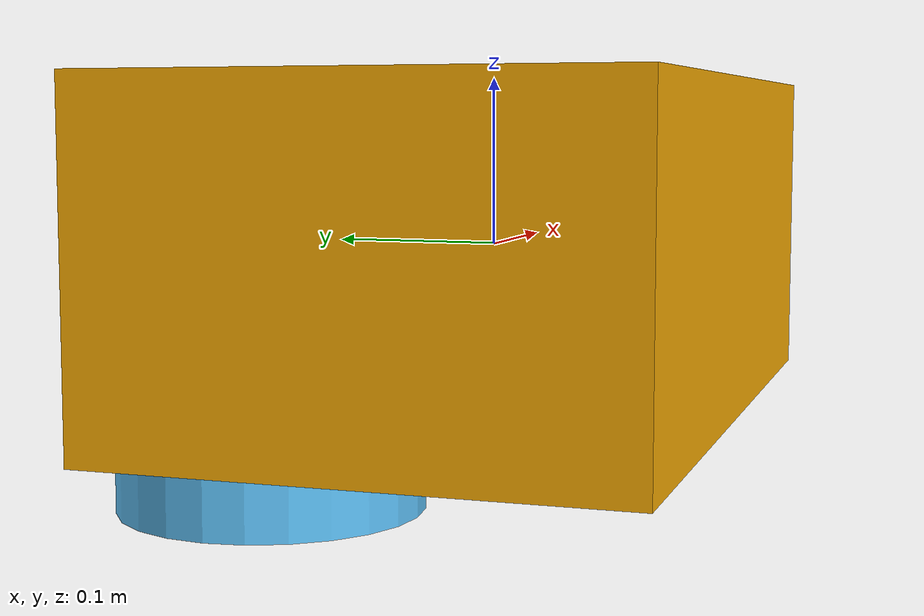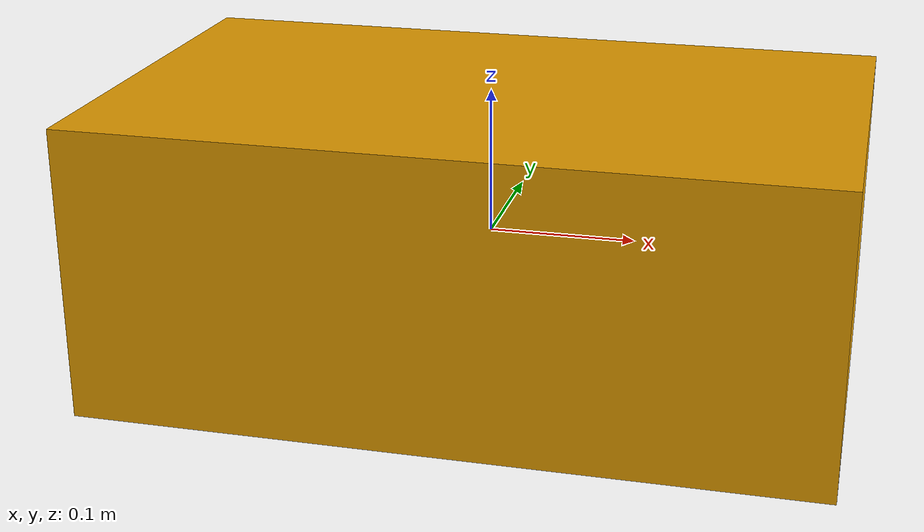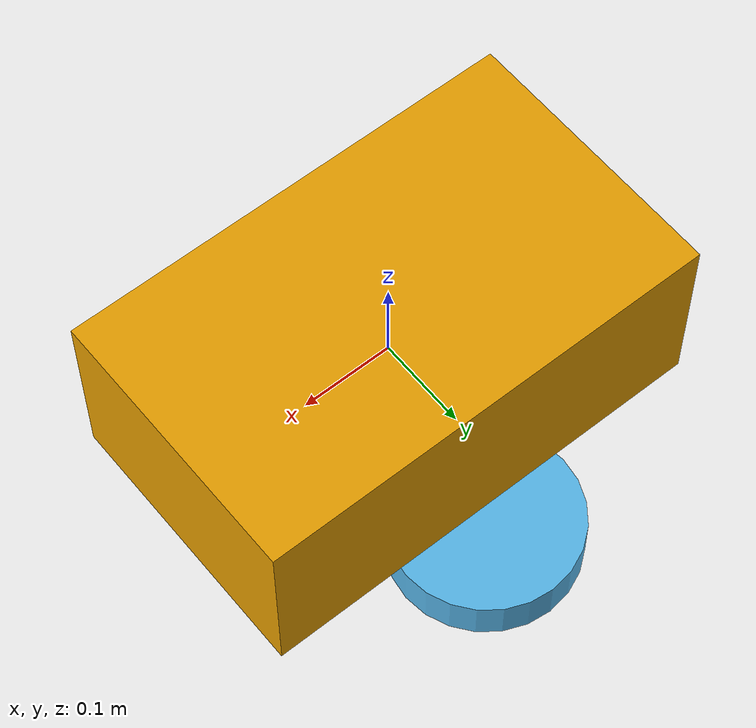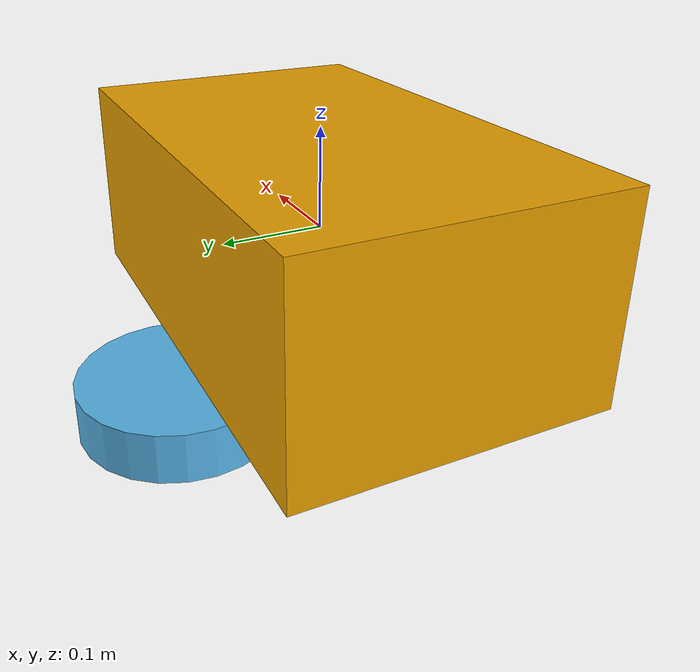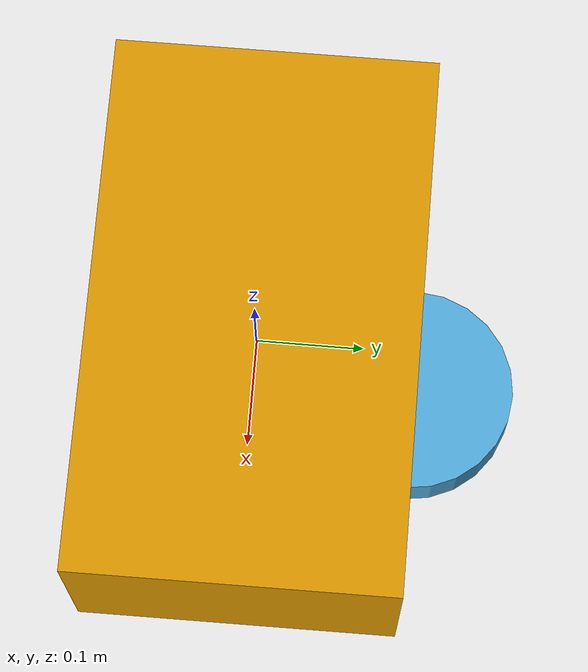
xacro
<?xml version="1.0"?>
<!-- Ultra-minimal: just a box + ONE wheel to debug motor/collision/physics -->
<robot name="test_minimal" xmlns:xacro="http://www.ros.org/wiki/xacro">

  <link name="base_link">
    <inertial>
      <mass value="5.0" />
      <inertia ixx="0.1" ixy="0" ixz="0" iyy="0.1" iyz="0" izz="0.1" />
    </inertial>
    <visual>
      <geometry>
        <box size="0.5 0.3 0.2" />
      </geometry>
    </visual>
    <collision>
      <geometry>
        <box size="0.5 0.3 0.2" />
      </geometry>
    </collision>
  </link>

  <link name="wheel">
    <inertial>
      <mass value="0.5" />
      <inertia ixx="0.01" ixy="0" ixz="0" iyy="0.01" iyz="0" izz="0.01" />
    </inertial>
    <visual>
      <geometry>
        <cylinder radius="0.1" length="0.05" />
      </geometry>
    </visual>
    <collision>
      <origin rpy="1.5707963 0 0" />
      <geometry>
        <cylinder radius="0.1" length="0.05" />
      </geometry>
    </collision>
  </link>

  <joint name="wheel_joint" type="continuous">
    <parent link="base_link" />
    <child link="wheel" />
    <origin xyz="0 0.15 -0.15" />
    <axis xyz="0 1 0" />
    <dynamics damping="0.0" friction="0.0" />
  </joint>

  <gazebo reference="wheel">
    <mu1>1.0</mu1>
    <mu2>1.0</mu2>
  </gazebo>

  <ros2_control name="test_system" type="system">
    <hardware>
      <plugin>gz_ros2_control/GazeboSimSystem</plugin>
    </hardware>
    <joint name="wheel_joint">
      <command_interface name="velocity">
        <param name="min">-10.0</param>
        <param name="max">10.0</param>
      </command_interface>
      <state_interface name="velocity" />
    </joint>
  </ros2_control>

  <gazebo>
    <plugin filename="gz_ros2_control-system" name="gz_ros2_control::GazeboSimROS2ControlPlugin">
      <parameters>$(find amr_ros_dg)/config/amr_ros_dg_controllers.yaml</parameters>
    </plugin>
  </gazebo>

</robot>
